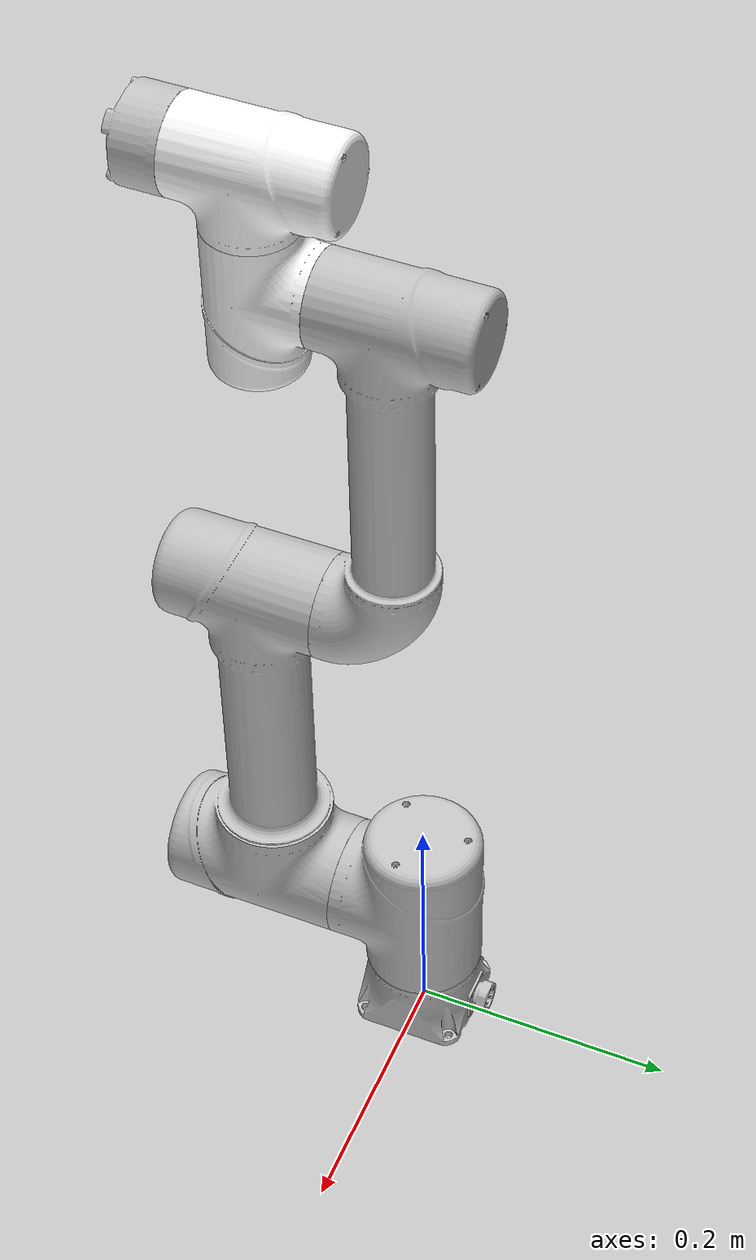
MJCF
<mujoco model="ROCR6II_URDF_file">
    <compiler angle="radian" meshdir="../meshes/" />
    <size njmax="500" nconmax="100" />
    <asset>
        <mesh name="base_link" file="base_link.stl" />
        <mesh name="shoulder_link" file="shoulder_link.stl" />
        <mesh name="upper_arm_link" file="upper_arm_link.stl" />
        <mesh name="forearm_link" file="forearm_link.stl" />
        <mesh name="wrist_1_link" file="wrist_1_link.stl" />
        <mesh name="wrist_2_link" file="wrist_2_link.stl" />
        <mesh name="wrist_3_link" file="wrist_3_link.stl" />
    </asset>
    <worldbody>
        <geom quat="0 -5.10347e-12 -5.10336e-12 -1" type="mesh" contype="0" conaffinity="0" group="1" rgba="0.75294 0.75294 0.75294 1" mesh="base_link" />
        <geom quat="0 -5.10347e-12 -5.10336e-12 -1" type="mesh" rgba="0.75294 0.75294 0.75294 1" mesh="base_link" />
        <body name="shoulder_link" pos="1.24013e-12 1.24013e-12 0.1215" quat="0 -5.10341e-12 -5.10341e-12 -1">
            <inertial pos="7.9174e-07 0.0037223 0.0030792" quat="0.999819 0.0190198 -6.43474e-06 0.000105874" mass="6.7582" diaginertia="0.013187 0.012924 0.00811514" />
            <joint name="shoulder_pan_joint" pos="0 0 0" axis="0 0 1" limited="true" range="-3.1416 3.1416" />
            <geom type="mesh" contype="0" conaffinity="0" group="1" rgba="0.75294 0.75294 0.75294 1" mesh="shoulder_link" />
            <geom type="mesh" rgba="0.75294 0.75294 0.75294 1" mesh="shoulder_link" />
            <body name="upper_arm_link" pos="0 0.1225 0">
                <inertial pos="-5.4357e-07 0.0032767 0.12625" quat="0.956664 0.291193 5.03822e-06 -2.99316e-06" mass="12.877" diaginertia="0.024695 0.0194817 0.0180523" />
                <joint name="shoulder_lift_joint" pos="0 0 0" axis="0 1 0" limited="true" range="-3.1416 3.1416" />
                <geom type="mesh" contype="0" conaffinity="0" group="1" rgba="0.75294 0.75294 0.75294 1" mesh="upper_arm_link" />
                <geom type="mesh" rgba="0.75294 0.75294 0.75294 1" mesh="upper_arm_link" />
                <body name="forearm_link" pos="0 -0.102 0.3">
                    <inertial pos="0.00014266 -0.0049203 0.20706" quat="0.998482 0.0550031 -0.00141582 -0.00240583" mass="4.7791" diaginertia="0.00942229 0.00732083 0.00527519" />
                    <joint name="elbow_joint" pos="0 0 0" axis="0 1 0" limited="true" range="-3.1416 3.1416" />
                    <geom type="mesh" contype="0" conaffinity="0" group="1" rgba="0.75294 0.75294 0.75294 1" mesh="forearm_link" />
                    <geom type="mesh" rgba="0.75294 0.75294 0.75294 1" mesh="forearm_link" />
                    <body name="wrist_1_link" pos="0 0 0.276">
                        <inertial pos="5.3079e-07 0.087296 -0.010609" quat="0.99974 0.0228064 1.00901e-06 -4.4231e-05" mass="3.1072" diaginertia="0.0040287 0.0039449 0.0018782" />
                        <joint name="wrist_1_joint" pos="0 0 0" axis="0 1 0" limited="true" range="-3.1416 3.1416" />
                        <geom type="mesh" contype="0" conaffinity="0" group="1" rgba="1 1 1 1" mesh="wrist_1_link" />
                        <geom type="mesh" rgba="1 1 1 1" mesh="wrist_1_link" />
                        <body name="wrist_2_link" pos="0 0.09 0">
                            <inertial pos="-5.306e-07 -0.010609 0.087296" quat="0.723049 0.690796 -3.04977e-05 3.19216e-05" mass="3.1072" diaginertia="0.0040287 0.0039449 0.0018782" />
                            <joint name="wrist_2_joint" pos="0 0 0" axis="0 0 1" limited="true" range="-3.1416 3.1416" />
                            <geom type="mesh" contype="0" conaffinity="0" group="1" rgba="1 1 1 1" mesh="wrist_2_link" />
                            <geom type="mesh" rgba="1 1 1 1" mesh="wrist_2_link" />
                            <body name="wrist_3_link" pos="0 0 0.09">
                                <inertial pos="-1.7145e-09 0.0649864 2.543e-05" quat="0.491788 0.508079 0.491848 0.508021" mass="0.59241" diaginertia="0.000400757 0.000248973 0.000247842" />
                                <joint name="wrist_3_joint" pos="0 0 0" axis="0 1 0" limited="true" range="-3.1416 3.1416" />
                                <geom type="mesh" contype="0" conaffinity="0" group="1" rgba="0.75294 0.75294 0.75294 1" mesh="wrist_3_link" />
                                <geom type="mesh" rgba="0.75294 0.75294 0.75294 1" mesh="wrist_3_link" />
                                <geom size="0.005 0.005 0.005" pos="0 0.08 0" quat="0.707107 0 0 0.707107" type="box" />
                            </body>
                        </body>
                    </body>
                </body>
            </body>
        </body>
    </worldbody>
</mujoco>
